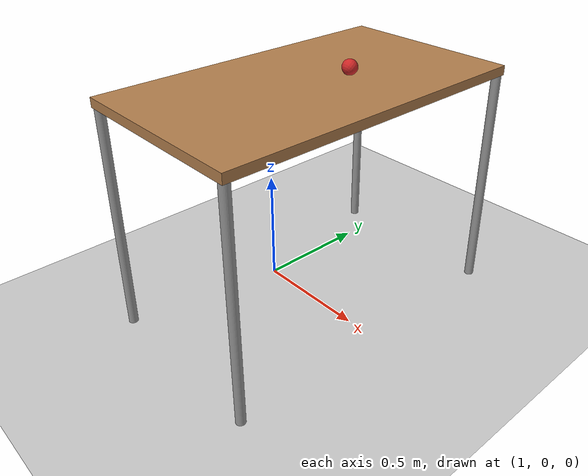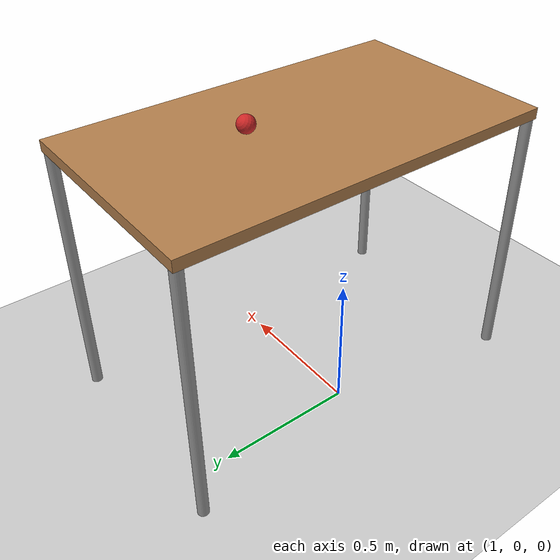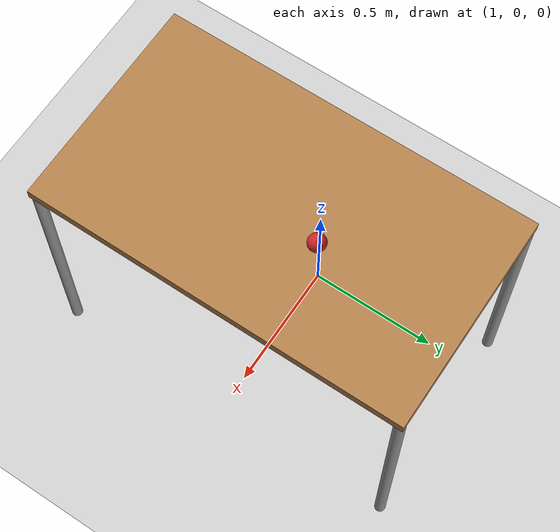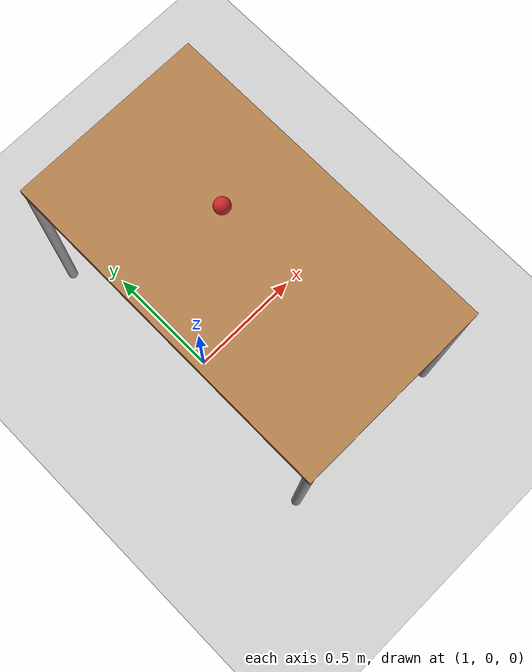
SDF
<sdf version="1.6">
 <world name="default">
  <model name="ground_plane">
   <static>1</static>
   <link name="link">
    <collision name="collision">
     <geometry><plane><normal>0 0 1</normal><size>100 100</size></plane></geometry>
     <surface><friction><ode><mu>100</mu><mu2>50</mu2></ode></friction></surface>
    </collision>
    <visual name="visual">
     <cast_shadows>0</cast_shadows>
     <geometry><plane><normal>0 0 1</normal><size>100 100</size></plane></geometry>
     <material>
      <script><uri>file://media/materials/scripts/gazebo.material</uri><name>Gazebo/Grey</name></script>
     </material>
    </visual>
   </link>
  </model>
  <light name="sun" type="directional">
   <pose>0 0 10 0 -0 0</pose>
   <diffuse>0.8 0.8 0.8 1</diffuse>
   <specular>0.1 0.1 0.1 1</specular>
   <attenuation>
    <range>1000</range>
    <constant>0.9</constant>
    <linear>0.01</linear>
    <quadratic>0.001</quadratic>
   </attenuation>
   <direction>-0.5 0.5 -1</direction>
  </light>
  <physics name="default_physics" default="0" type="ode">
   <real_time_update_rate>1000</real_time_update_rate>
   <max_step_size>0.001</max_step_size>
   <real_time_factor>1</real_time_factor>
  </physics>
  <gravity>0 0 -9.81</gravity>
  <magnetic_field>6e-06 2.3e-05 -4.2e-05</magnetic_field>
  <atmosphere type="adiabatic"/>
  <scene><ambient>0.4 0.4 0.4 1</ambient><background>0.7 0.7 0.7 1</background><shadows>1</shadows></scene>
  <spherical_coordinates>
   <surface_model>EARTH_WGS84</surface_model>
   <latitude_deg>0</latitude_deg>
   <longitude_deg>0</longitude_deg>
   <elevation>0</elevation>
   <heading_deg>0</heading_deg>
  </spherical_coordinates>
  <model name="table">
   <static>0</static>
   <link name="link">
    <collision name="surface">
     <pose>0 0 1 0 -0 0</pose>
     <geometry><box><size>1.5 0.8 0.03</size></box></geometry>
     <surface><friction><ode><mu>0.6</mu><mu2>0.6</mu2></ode></friction></surface>
    </collision>
    <visual name="visual1">
     <pose>0 0 1 0 -0 0</pose>
     <geometry><box><size>1.4 0.8 0.04</size></box></geometry>
     <material>
      <script><uri>file://media/materials/scripts/gazebo.material</uri><name>Gazebo/Wood</name></script>
     </material>
    </visual>
    <collision name="front_left_leg">
     <pose>0.68 0.38 0.5 0 -0 0</pose>
     <geometry><cylinder><radius>0.02</radius><length>1</length></cylinder></geometry>
    </collision>
    <visual name="front_left_leg">
     <pose>0.68 0.38 0.5 0 -0 0</pose>
     <geometry><cylinder><radius>0.02</radius><length>1</length></cylinder></geometry>
     <material>
      <script><uri>file://media/materials/scripts/gazebo.material</uri><name>Gazebo/Grey</name></script>
     </material>
    </visual>
    <collision name="front_right_leg">
     <pose>0.68 -0.38 0.5 0 -0 0</pose>
     <geometry><cylinder><radius>0.02</radius><length>1</length></cylinder></geometry>
    </collision>
    <visual name="front_right_leg">
     <pose>0.68 -0.38 0.5 0 -0 0</pose>
     <geometry><cylinder><radius>0.02</radius><length>1</length></cylinder></geometry>
     <material>
      <script><uri>file://media/materials/scripts/gazebo.material</uri><name>Gazebo/Grey</name></script>
     </material>
    </visual>
    <collision name="back_right_leg">
     <pose>-0.68 -0.38 0.5 0 -0 0</pose>
     <geometry><cylinder><radius>0.02</radius><length>1</length></cylinder></geometry>
    </collision>
    <visual name="back_right_leg">
     <pose>-0.68 -0.38 0.5 0 -0 0</pose>
     <geometry><cylinder><radius>0.02</radius><length>1</length></cylinder></geometry>
     <material>
      <script><uri>file://media/materials/scripts/gazebo.material</uri><name>Gazebo/Grey</name></script>
     </material>
    </visual>
    <collision name="back_left_leg">
     <pose>-0.68 0.38 0.5 0 -0 0</pose>
     <geometry><cylinder><radius>0.02</radius><length>1</length></cylinder></geometry>
    </collision>
    <visual name="back_left_leg">
     <pose>-0.68 0.38 0.5 0 -0 0</pose>
     <geometry><cylinder><radius>0.02</radius><length>1</length></cylinder></geometry>
     <material>
      <script><uri>file://media/materials/scripts/gazebo.material</uri><name>Gazebo/Grey</name></script>
     </material>
    </visual>
    <inertial>
     <inertia><ixx>1</ixx><ixy>0</ixy><ixz>0</ixz><iyy>1</iyy><iyz>0</iyz><izz>1</izz></inertia>
     <mass>1</mass>
    </inertial>
   </link>
   <pose>1.25009 3.5e-05 -2e-06 0 -3e-06 1.57057</pose>
  </model>
  <model name="RoboCup SPL Ball">
   <static>0</static>
   <link name="ball">
    <inertial>
     <mass>0.0056</mass>
     <inertia>
      <ixx>2.37e-06</ixx>
      <iyy>2.37e-06</iyy>
      <izz>2.37e-06</izz>
      <ixy>0</ixy>
      <ixz>0</ixz>
      <iyz>0</iyz>
     </inertia>
    </inertial>
    <collision name="collision"><geometry><sphere><radius>0.0325</radius></sphere></geometry></collision>
    <visual name="visual">
     <geometry><sphere><radius>0.0325</radius></sphere></geometry>
     <material>
      <script><uri>file://media/materials/scripts/gazebo.material</uri><name>Gazebo/RedBright</name></script>
     </material>
    </visual>
   </link>
   <pose>1.30034 0.165414 1.0475 2.25075 -0.026046 -0.008676</pose>
  </model>
 </world>
</sdf>
